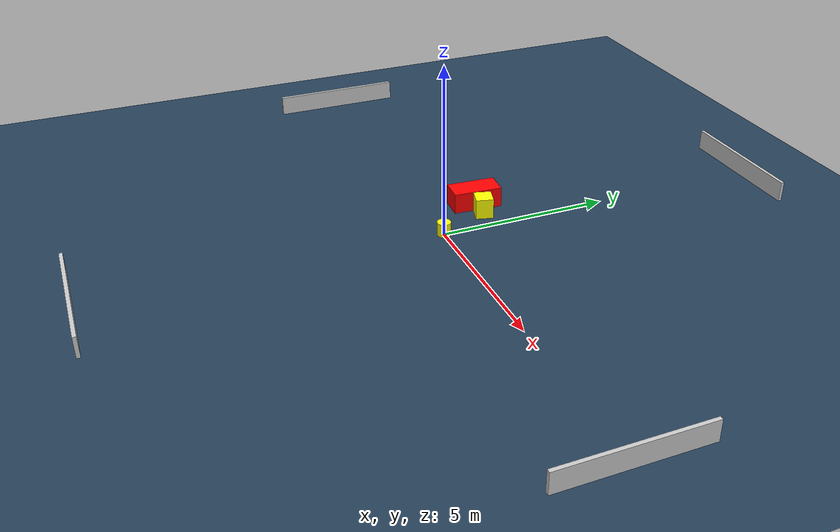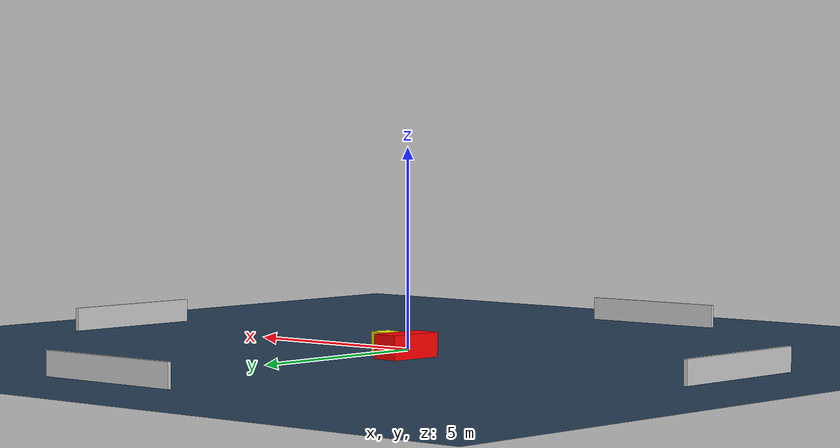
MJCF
<?xml version="1.0" ?>
<mujoco model="generated_environment">
  <option timestep="0.01" integrator="RK4" cone="elliptic"/>
  <default>
    <geom density="1"/>
  </default>
  <asset>
    <texture builtin="gradient" height="3072" name="skybox" rgb1="0.3 0.5 0.7" rgb2="0 0 0" type="skybox" width="512"/>
    <texture builtin="checker" height="300" name="groundplane" rgb1="0.2 0.3 0.4" rgb2="0.1 0.2 0.3" type="2d" width="300"/>
    <material name="groundplane" reflectance="0.2" texrepeat="5 5" texture="groundplane"/>
  </asset>
  <worldbody>
    <light dir="0 0 -1" directional="true" pos="0 0 1.5"/>
    <geom condim="3" friction="0.5 0.005 0.001" material="groundplane" name="floor" pos="0 0 0" size="0 0 0.05" type="plane"/>
    <body name="walls">
      <geom name="wall_1" condim="4" pos="-10.0 0.0 0.3" rgba="0.800000011920929 0.800000011920929 0.800000011920929 1.0" size="0.05 2.0 0.3" type="box"/>
      <geom name="wall_2" condim="4" pos="10.0 0.0 0.3" rgba="0.800000011920929 0.800000011920929 0.800000011920929 1.0" size="0.05 2.0 0.3" type="box"/>
      <geom name="wall_3" condim="4" pos="0.0 -10.0 0.3" rgba="0.800000011920929 0.800000011920929 0.800000011920929 1.0" size="2.0 0.05 0.3" type="box"/>
      <geom name="wall_4" condim="4" pos="0.0 10.0 0.3" rgba="0.800000011920929 0.800000011920929 0.800000011920929 1.0" size="2.0 0.05 0.3" type="box"/>
    </body>
    <body name="robot">
      <joint name="joint_x" type="slide" pos="0 0 0" axis="1 0 0"/>
      <joint name="joint_y" type="slide" pos="0 0 0" axis="0 1 0"/>
      <geom name="robot" type="cylinder" pos="0.0 0.0 0.2" size="0.2 0.2 0.0" mass="5.0" friction="1.0 0.005 0.0001" condim="4" rgba="1.0 1.0 0.0 1.0"/>
    </body>
    <body name="obstacle_1_movable">
      <geom name="obstacle_1_movable" condim="4" pos="-0.6332737705448759 1.4957227258302876 0.3" euler="0 0 165.02147161136494" friction="0.0 0.005 0.001" rgba="1.0 1.0 0.0 1.0" size="0.2591557296795149 0.2554415509037775 0.3" type="box" mass="0.1"/>
      <joint type="free"/>
    </body>
    <body name="obstacle_2_static">
      <geom name="obstacle_2_static" condim="4" pos="-1.2902195665398049 1.4972744912541773 0.3" euler="0 0 266.3012104300496" friction="0.0 0.005 0.001" rgba="1.0 0.0 0.0 1.0" size="0.7178626947043403 0.3501366169712485 0.3" type="box"/>
    </body>
  </worldbody>
  <actuator>
    <motor name="actuator_x" joint="joint_x" gear="1" ctrlrange="-1 1"/>
    <motor name="actuator_y" joint="joint_y" gear="1" ctrlrange="-1 1"/>
  </actuator>
</mujoco>
